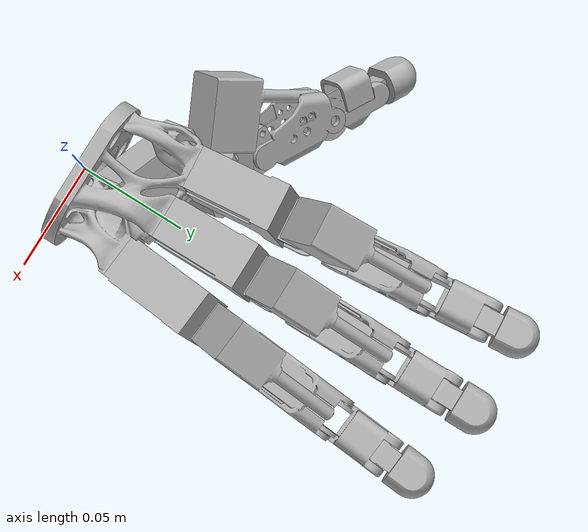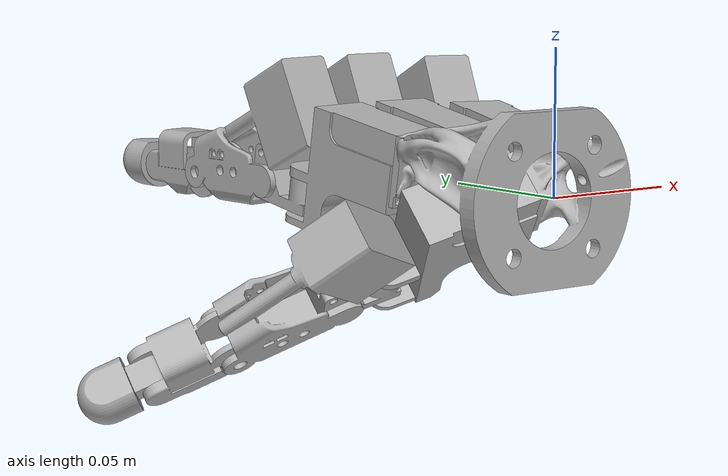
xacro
<?xml version="1.0" ?>
<robot name="hand_urdf" xmlns:xacro="http://www.ros.org/wiki/xacro">

<xacro:include filename="$(find hand_urdf_description)/urdf/materials.xacro" />
<xacro:include filename="$(find hand_urdf_description)/urdf/hand_urdf.trans" />
<xacro:include filename="$(find hand_urdf_description)/urdf/hand_urdf.gazebo" />
<link name="base_link">
  <inertial>
    <origin xyz="0.00012921570168839317 0.017296271435922838 0.004513375763540404" rpy="0 0 0"/>
    <mass value="0.038866249408726565"/>
    <inertia ixx="1.6e-05" iyy="2.3e-05" izz="2.4e-05" ixy="1e-06" iyz="-2e-06" ixz="1e-06"/>
  </inertial>
  <visual>
    <origin xyz="0 0 0" rpy="0 0 0"/>
    <geometry>
      <mesh filename="package://hand_urdf_description/meshes/base_link.stl" scale="0.001 0.001 0.001"/>
    </geometry>
    <material name="silver"/>
  </visual>
  <collision>
    <origin xyz="0 0 0" rpy="0 0 0"/>
    <geometry>
      <mesh filename="package://hand_urdf_description/meshes/base_link.stl" scale="0.001 0.001 0.001"/>
    </geometry>
  </collision>
</link>

<link name="mcp2_1">
  <inertial>
    <origin xyz="-0.000857219821930856 0.008425276895379877 0.008651662245754697" rpy="0 0 0"/>
    <mass value="0.015089936324531419"/>
    <inertia ixx="2e-06" iyy="1e-06" izz="2e-06" ixy="0.0" iyz="-0.0" ixz="0.0"/>
  </inertial>
  <visual>
    <origin xyz="0.029022 -0.100047 0.013279" rpy="0 0 0"/>
    <geometry>
      <mesh filename="package://hand_urdf_description/meshes/mcp2_1.stl" scale="0.001 0.001 0.001"/>
    </geometry>
    <material name="silver"/>
  </visual>
  <collision>
    <origin xyz="0.029022 -0.100047 0.013279" rpy="0 0 0"/>
    <geometry>
      <mesh filename="package://hand_urdf_description/meshes/mcp2_1.stl" scale="0.001 0.001 0.001"/>
    </geometry>
  </collision>
</link>

<link name="pp2_1">
  <inertial>
    <origin xyz="0.005589631674371154 0.02220035094602557 0.0017282537013605936" rpy="0 0 0"/>
    <mass value="0.012568722734729351"/>
    <inertia ixx="3e-06" iyy="2e-06" izz="3e-06" ixy="0.0" iyz="-0.0" ixz="0.0"/>
  </inertial>
  <visual>
    <origin xyz="0.037975 -0.114727 0.00277" rpy="0 0 0"/>
    <geometry>
      <mesh filename="package://hand_urdf_description/meshes/pp2_1.stl" scale="0.001 0.001 0.001"/>
    </geometry>
    <material name="silver"/>
  </visual>
  <collision>
    <origin xyz="0.037975 -0.114727 0.00277" rpy="0 0 0"/>
    <geometry>
      <mesh filename="package://hand_urdf_description/meshes/pp2_1.stl" scale="0.001 0.001 0.001"/>
    </geometry>
  </collision>
</link>

<link name="mp2_1">
  <inertial>
    <origin xyz="0.006764528698269524 0.014467776415687972 0.0012618718592496685" rpy="0 0 0"/>
    <mass value="0.012984163668630283"/>
    <inertia ixx="2e-06" iyy="1e-06" izz="2e-06" ixy="0.0" iyz="-0.0" ixz="0.0"/>
  </inertial>
  <visual>
    <origin xyz="0.041906 -0.154536 0.002803" rpy="0 0 0"/>
    <geometry>
      <mesh filename="package://hand_urdf_description/meshes/mp2_1.stl" scale="0.001 0.001 0.001"/>
    </geometry>
    <material name="silver"/>
  </visual>
  <collision>
    <origin xyz="0.041906 -0.154536 0.002803" rpy="0 0 0"/>
    <geometry>
      <mesh filename="package://hand_urdf_description/meshes/mp2_1.stl" scale="0.001 0.001 0.001"/>
    </geometry>
  </collision>
</link>

<link name="dp2_1">
  <inertial>
    <origin xyz="0.00429284844540978 0.014295948406414294 -0.0002467668250413545" rpy="0 0 0"/>
    <mass value="0.015173806174410396"/>
    <inertia ixx="1e-06" iyy="1e-06" izz="1e-06" ixy="0.0" iyz="0.0" ixz="-0.0"/>
  </inertial>
  <visual>
    <origin xyz="0.041819 -0.182648 0.002784" rpy="0 0 0"/>
    <geometry>
      <mesh filename="package://hand_urdf_description/meshes/dp2_1.stl" scale="0.001 0.001 0.001"/>
    </geometry>
    <material name="silver"/>
  </visual>
  <collision>
    <origin xyz="0.041819 -0.182648 0.002784" rpy="0 0 0"/>
    <geometry>
      <mesh filename="package://hand_urdf_description/meshes/dp2_1.stl" scale="0.001 0.001 0.001"/>
    </geometry>
  </collision>
</link>

<link name="meta2_1">
  <inertial>
    <origin xyz="-0.01211260735781576 0.02648361887802418 -0.013626030591322096" rpy="0 0 0"/>
    <mass value="0.08275708846623805"/>
    <inertia ixx="2.6e-05" iyy="1.2e-05" izz="2e-05" ixy="1e-06" iyz="4e-06" ixz="-0.0"/>
  </inertial>
  <visual>
    <origin xyz="0.01455 -0.042738 -0.019873" rpy="0 0 0"/>
    <geometry>
      <mesh filename="package://hand_urdf_description/meshes/meta2_1.stl" scale="0.001 0.001 0.001"/>
    </geometry>
    <material name="silver"/>
  </visual>
  <collision>
    <origin xyz="0.01455 -0.042738 -0.019873" rpy="0 0 0"/>
    <geometry>
      <mesh filename="package://hand_urdf_description/meshes/meta2_1.stl" scale="0.001 0.001 0.001"/>
    </geometry>
  </collision>
</link>

<link name="meta1_1">
  <inertial>
    <origin xyz="-0.01433264799255881 0.013595958407209792 -0.025367779301763302" rpy="0 0 0"/>
    <mass value="0.08275708846623805"/>
    <inertia ixx="1.8e-05" iyy="1.9e-05" izz="2.1e-05" ixy="4e-06" iyz="6e-06" ixz="-4e-06"/>
  </inertial>
  <visual>
    <origin xyz="0.001495 -0.018282 -0.014265" rpy="0 0 0"/>
    <geometry>
      <mesh filename="package://hand_urdf_description/meshes/meta1_1.stl" scale="0.001 0.001 0.001"/>
    </geometry>
    <material name="silver"/>
  </visual>
  <collision>
    <origin xyz="0.001495 -0.018282 -0.014265" rpy="0 0 0"/>
    <geometry>
      <mesh filename="package://hand_urdf_description/meshes/meta1_1.stl" scale="0.001 0.001 0.001"/>
    </geometry>
  </collision>
</link>

<link name="mcp1_1">
  <inertial>
    <origin xyz="-0.011892392991186895 -0.001978714513159799 0.0011010693501598903" rpy="0 0 0"/>
    <mass value="0.015089936324531419"/>
    <inertia ixx="1e-06" iyy="2e-06" izz="2e-06" ixy="0.0" iyz="0.0" ixz="-0.0"/>
  </inertial>
  <visual>
    <origin xyz="0.029913 -0.05726 0.033338" rpy="0 0 0"/>
    <geometry>
      <mesh filename="package://hand_urdf_description/meshes/mcp1_1.stl" scale="0.001 0.001 0.001"/>
    </geometry>
    <material name="silver"/>
  </visual>
  <collision>
    <origin xyz="0.029913 -0.05726 0.033338" rpy="0 0 0"/>
    <geometry>
      <mesh filename="package://hand_urdf_description/meshes/mcp1_1.stl" scale="0.001 0.001 0.001"/>
    </geometry>
  </collision>
</link>

<link name="pp1_1">
  <inertial>
    <origin xyz="-0.018351787155970807 0.003166558534248194 -0.013426634251556484" rpy="0 0 0"/>
    <mass value="0.012568722734729351"/>
    <inertia ixx="2e-06" iyy="3e-06" izz="3e-06" ixy="0.0" iyz="-0.0" ixz="-0.0"/>
  </inertial>
  <visual>
    <origin xyz="0.048881 -0.061771 0.028246" rpy="0 0 0"/>
    <geometry>
      <mesh filename="package://hand_urdf_description/meshes/pp1_1.stl" scale="0.001 0.001 0.001"/>
    </geometry>
    <material name="silver"/>
  </visual>
  <collision>
    <origin xyz="0.048881 -0.061771 0.028246" rpy="0 0 0"/>
    <geometry>
      <mesh filename="package://hand_urdf_description/meshes/pp1_1.stl" scale="0.001 0.001 0.001"/>
    </geometry>
  </collision>
</link>

<link name="mp1_1">
  <inertial>
    <origin xyz="-0.012268990295802334 0.010230288629700227 0.0012193187905829156" rpy="0 0 0"/>
    <mass value="0.012984163668630283"/>
    <inertia ixx="1e-06" iyy="2e-06" izz="2e-06" ixy="0.0" iyz="0.0" ixz="-0.0"/>
  </inertial>
  <visual>
    <origin xyz="0.081016 -0.068487 0.055859" rpy="0 0 0"/>
    <geometry>
      <mesh filename="package://hand_urdf_description/meshes/mp1_1.stl" scale="0.001 0.001 0.001"/>
    </geometry>
    <material name="silver"/>
  </visual>
  <collision>
    <origin xyz="0.081016 -0.068487 0.055859" rpy="0 0 0"/>
    <geometry>
      <mesh filename="package://hand_urdf_description/meshes/mp1_1.stl" scale="0.001 0.001 0.001"/>
    </geometry>
  </collision>
</link>

<link name="dp1_1">
  <inertial>
    <origin xyz="-0.010958343233780934 0.0024543414174510725 -0.009836853940340486" rpy="0 0 0"/>
    <mass value="0.015173806174410396"/>
    <inertia ixx="1e-06" iyy="1e-06" izz="1e-06" ixy="0.0" iyz="0.0" ixz="-0.0"/>
  </inertial>
  <visual>
    <origin xyz="0.104413 -0.088938 0.056639" rpy="0 0 0"/>
    <geometry>
      <mesh filename="package://hand_urdf_description/meshes/dp1_1.stl" scale="0.001 0.001 0.001"/>
    </geometry>
    <material name="silver"/>
  </visual>
  <collision>
    <origin xyz="0.104413 -0.088938 0.056639" rpy="0 0 0"/>
    <geometry>
      <mesh filename="package://hand_urdf_description/meshes/dp1_1.stl" scale="0.001 0.001 0.001"/>
    </geometry>
  </collision>
</link>

<link name="meta3_1">
  <inertial>
    <origin xyz="-0.009999620624593057 0.027434425012110977 -0.01345837781645952" rpy="0 0 0"/>
    <mass value="0.08275708846623805"/>
    <inertia ixx="2.6e-05" iyy="1.2e-05" izz="2e-05" ixy="-0.0" iyz="4e-06" ixz="0.0"/>
  </inertial>
  <visual>
    <origin xyz="-0.01045 -0.042738 -0.019873" rpy="0 0 0"/>
    <geometry>
      <mesh filename="package://hand_urdf_description/meshes/meta3_1.stl" scale="0.001 0.001 0.001"/>
    </geometry>
    <material name="silver"/>
  </visual>
  <collision>
    <origin xyz="-0.01045 -0.042738 -0.019873" rpy="0 0 0"/>
    <geometry>
      <mesh filename="package://hand_urdf_description/meshes/meta3_1.stl" scale="0.001 0.001 0.001"/>
    </geometry>
  </collision>
</link>

<link name="mcp3_1">
  <inertial>
    <origin xyz="3.793755412869826e-07 0.008462389758387132 0.008657702228539479" rpy="0 0 0"/>
    <mass value="0.015089936324531419"/>
    <inertia ixx="2e-06" iyy="1e-06" izz="2e-06" ixy="0.0" iyz="-0.0" ixz="-0.0"/>
  </inertial>
  <visual>
    <origin xyz="-0.00045 -0.101099 0.013093" rpy="0 0 0"/>
    <geometry>
      <mesh filename="package://hand_urdf_description/meshes/mcp3_1.stl" scale="0.001 0.001 0.001"/>
    </geometry>
    <material name="silver"/>
  </visual>
  <collision>
    <origin xyz="-0.00045 -0.101099 0.013093" rpy="0 0 0"/>
    <geometry>
      <mesh filename="package://hand_urdf_description/meshes/mcp3_1.stl" scale="0.001 0.001 0.001"/>
    </geometry>
  </collision>
</link>

<link name="pp3_1">
  <inertial>
    <origin xyz="-0.007499620582276984 0.021637222266037773 0.0016292944075148592" rpy="0 0 0"/>
    <mass value="0.012568722734729351"/>
    <inertia ixx="3e-06" iyy="2e-06" izz="3e-06" ixy="0.0" iyz="-0.0" ixz="-0.0"/>
  </inertial>
  <visual>
    <origin xyz="-0.00795 -0.116487 0.00246" rpy="0 0 0"/>
    <geometry>
      <mesh filename="package://hand_urdf_description/meshes/pp3_1.stl" scale="0.001 0.001 0.001"/>
    </geometry>
    <material name="silver"/>
  </visual>
  <collision>
    <origin xyz="-0.00795 -0.116487 0.00246" rpy="0 0 0"/>
    <geometry>
      <mesh filename="package://hand_urdf_description/meshes/pp3_1.stl" scale="0.001 0.001 0.001"/>
    </geometry>
  </collision>
</link>

<link name="mp3_1">
  <inertial>
    <origin xyz="0.00800037894498693 0.013832153666036212 0.0011508083582961706" rpy="0 0 0"/>
    <mass value="0.012984163668630283"/>
    <inertia ixx="2e-06" iyy="1e-06" izz="2e-06" ixy="0.0" iyz="-0.0" ixz="-0.0"/>
  </inertial>
  <visual>
    <origin xyz="0.00755 -0.156487 0.00246" rpy="0 0 0"/>
    <geometry>
      <mesh filename="package://hand_urdf_description/meshes/mp3_1.stl" scale="0.001 0.001 0.001"/>
    </geometry>
    <material name="silver"/>
  </visual>
  <collision>
    <origin xyz="0.00755 -0.156487 0.00246" rpy="0 0 0"/>
    <geometry>
      <mesh filename="package://hand_urdf_description/meshes/mp3_1.stl" scale="0.001 0.001 0.001"/>
    </geometry>
  </collision>
</link>

<link name="dp3_1">
  <inertial>
    <origin xyz="-0.005499620624595949 0.01387486124955059 -0.00032075053450385683" rpy="0 0 0"/>
    <mass value="0.015173806174410396"/>
    <inertia ixx="1e-06" iyy="1e-06" izz="1e-06" ixy="0.0" iyz="0.0" ixz="-0.0"/>
  </inertial>
  <visual>
    <origin xyz="-0.00595 -0.184487 0.00246" rpy="0 0 0"/>
    <geometry>
      <mesh filename="package://hand_urdf_description/meshes/dp3_1.stl" scale="0.001 0.001 0.001"/>
    </geometry>
    <material name="silver"/>
  </visual>
  <collision>
    <origin xyz="-0.00595 -0.184487 0.00246" rpy="0 0 0"/>
    <geometry>
      <mesh filename="package://hand_urdf_description/meshes/dp3_1.stl" scale="0.001 0.001 0.001"/>
    </geometry>
  </collision>
</link>

<link name="meta4_1">
  <inertial>
    <origin xyz="-0.00781123734537462 0.028200617914747858 -0.013323778438551112" rpy="0 0 0"/>
    <mass value="0.08275708846623805"/>
    <inertia ixx="2.6e-05" iyy="1.2e-05" izz="2e-05" ixy="-1e-06" iyz="4e-06" ixz="0.0"/>
  </inertial>
  <visual>
    <origin xyz="-0.035255 -0.033939 -0.018322" rpy="0 0 0"/>
    <geometry>
      <mesh filename="package://hand_urdf_description/meshes/meta4_1.stl" scale="0.001 0.001 0.001"/>
    </geometry>
    <material name="silver"/>
  </visual>
  <collision>
    <origin xyz="-0.035255 -0.033939 -0.018322" rpy="0 0 0"/>
    <geometry>
      <mesh filename="package://hand_urdf_description/meshes/meta4_1.stl" scale="0.001 0.001 0.001"/>
    </geometry>
  </collision>
</link>

<link name="mcp4_1">
  <inertial>
    <origin xyz="0.0008573751190080851 0.008425275932080492 0.008650914398521567" rpy="0 0 0"/>
    <mass value="0.015089936324531419"/>
    <inertia ixx="2e-06" iyy="1e-06" izz="2e-06" ixy="-0.0" iyz="-0.0" ixz="-0.0"/>
  </inertial>
  <visual>
    <origin xyz="-0.029803 -0.092965 0.014527" rpy="0 0 0"/>
    <geometry>
      <mesh filename="package://hand_urdf_description/meshes/mcp4_1.stl" scale="0.001 0.001 0.001"/>
    </geometry>
    <material name="silver"/>
  </visual>
  <collision>
    <origin xyz="-0.029803 -0.092965 0.014527" rpy="0 0 0"/>
    <geometry>
      <mesh filename="package://hand_urdf_description/meshes/mcp4_1.stl" scale="0.001 0.001 0.001"/>
    </geometry>
  </collision>
</link>

<link name="pp4_1">
  <inertial>
    <origin xyz="-0.005589476293251516 0.02220034997548516 0.0017285058528506928" rpy="0 0 0"/>
    <mass value="0.012568722734729351"/>
    <inertia ixx="3e-06" iyy="2e-06" izz="3e-06" ixy="-0.0" iyz="-0.0" ixz="-0.0"/>
  </inertial>
  <visual>
    <origin xyz="-0.038756 -0.107645 0.004019" rpy="0 0 0"/>
    <geometry>
      <mesh filename="package://hand_urdf_description/meshes/pp4_1.stl" scale="0.001 0.001 0.001"/>
    </geometry>
    <material name="silver"/>
  </visual>
  <collision>
    <origin xyz="-0.038756 -0.107645 0.004019" rpy="0 0 0"/>
    <geometry>
      <mesh filename="package://hand_urdf_description/meshes/pp4_1.stl" scale="0.001 0.001 0.001"/>
    </geometry>
  </collision>
</link>

<link name="mp4_1">
  <inertial>
    <origin xyz="0.009174625740975717 0.013093775526298868 0.0010201240250489563" rpy="0 0 0"/>
    <mass value="0.012984163668630283"/>
    <inertia ixx="2e-06" iyy="1e-06" izz="2e-06" ixy="-0.0" iyz="-0.0" ixz="-0.0"/>
  </inertial>
  <visual>
    <origin xyz="-0.026748 -0.148828 0.00381" rpy="0 0 0"/>
    <geometry>
      <mesh filename="package://hand_urdf_description/meshes/mp4_1.stl" scale="0.001 0.001 0.001"/>
    </geometry>
    <material name="silver"/>
  </visual>
  <collision>
    <origin xyz="-0.026748 -0.148828 0.00381" rpy="0 0 0"/>
    <geometry>
      <mesh filename="package://hand_urdf_description/meshes/mp4_1.stl" scale="0.001 0.001 0.001"/>
    </geometry>
  </collision>
</link>

<link name="dp4_1">
  <inertial>
    <origin xyz="-0.004292693148604226 0.014295947443138057 -0.00024651467227084205" rpy="0 0 0"/>
    <mass value="0.015173806174410396"/>
    <inertia ixx="1e-06" iyy="1e-06" izz="1e-06" ixy="-0.0" iyz="0.0" ixz="0.0"/>
  </inertial>
  <visual>
    <origin xyz="-0.0426 -0.175566 0.004033" rpy="0 0 0"/>
    <geometry>
      <mesh filename="package://hand_urdf_description/meshes/dp4_1.stl" scale="0.001 0.001 0.001"/>
    </geometry>
    <material name="silver"/>
  </visual>
  <collision>
    <origin xyz="-0.0426 -0.175566 0.004033" rpy="0 0 0"/>
    <geometry>
      <mesh filename="package://hand_urdf_description/meshes/dp4_1.stl" scale="0.001 0.001 0.001"/>
    </geometry>
  </collision>
</link>

<link name="act1_1">
  <inertial>
    <origin xyz="-0.0008334783690262457 -0.010584048424232925 0.013540137304842742" rpy="0 0 0"/>
    <mass value="0.05002702926944018"/>
    <inertia ixx="6e-06" iyy="8e-06" izz="9e-06" ixy="1e-06" iyz="2e-06" ixz="-1e-06"/>
  </inertial>
  <visual>
    <origin xyz="0.056571 -0.049357 0.03252" rpy="0 0 0"/>
    <geometry>
      <mesh filename="package://hand_urdf_description/meshes/act1_1.stl" scale="0.001 0.001 0.001"/>
    </geometry>
    <material name="silver"/>
  </visual>
  <collision>
    <origin xyz="0.056571 -0.049357 0.03252" rpy="0 0 0"/>
    <geometry>
      <mesh filename="package://hand_urdf_description/meshes/act1_1.stl" scale="0.001 0.001 0.001"/>
    </geometry>
  </collision>
</link>

<link name="act2_1">
  <inertial>
    <origin xyz="-0.002920339024002166 -0.0093747457460025 0.014129623411935913" rpy="0 0 0"/>
    <mass value="0.05002702926944018"/>
    <inertia ixx="1e-05" iyy="6e-06" izz="8e-06" ixy="0.0" iyz="-0.0" ixz="0.0"/>
  </inertial>
  <visual>
    <origin xyz="0.027409 -0.118436 -0.007531" rpy="0 0 0"/>
    <geometry>
      <mesh filename="package://hand_urdf_description/meshes/act2_1.stl" scale="0.001 0.001 0.001"/>
    </geometry>
    <material name="silver"/>
  </visual>
  <collision>
    <origin xyz="0.027409 -0.118436 -0.007531" rpy="0 0 0"/>
    <geometry>
      <mesh filename="package://hand_urdf_description/meshes/act2_1.stl" scale="0.001 0.001 0.001"/>
    </geometry>
  </collision>
</link>

<link name="act3_1">
  <inertial>
    <origin xyz="-0.003499620624628681 -0.00909927882179469 0.014178076037896649" rpy="0 0 0"/>
    <mass value="0.05002702926944018"/>
    <inertia ixx="1e-05" iyy="6e-06" izz="8e-06" ixy="0.0" iyz="-0.0" ixz="0.0"/>
  </inertial>
  <visual>
    <origin xyz="-0.00395 -0.119269 -0.007678" rpy="0 0 0"/>
    <geometry>
      <mesh filename="package://hand_urdf_description/meshes/act3_1.stl" scale="0.001 0.001 0.001"/>
    </geometry>
    <material name="silver"/>
  </visual>
  <collision>
    <origin xyz="-0.00395 -0.119269 -0.007678" rpy="0 0 0"/>
    <geometry>
      <mesh filename="package://hand_urdf_description/meshes/act3_1.stl" scale="0.001 0.001 0.001"/>
    </geometry>
  </collision>
</link>

<link name="act4_1">
  <inertial>
    <origin xyz="-0.004053505679259262 -0.008773746709272695 0.014235875564707942" rpy="0 0 0"/>
    <mass value="0.05002702926944018"/>
    <inertia ixx="1e-05" iyy="6e-06" izz="8e-06" ixy="-0.0" iyz="-0.0" ixz="-0.0"/>
  </inertial>
  <visual>
    <origin xyz="-0.035164 -0.110753 -0.006176" rpy="0 0 0"/>
    <geometry>
      <mesh filename="package://hand_urdf_description/meshes/act4_1.stl" scale="0.001 0.001 0.001"/>
    </geometry>
    <material name="silver"/>
  </visual>
  <collision>
    <origin xyz="-0.035164 -0.110753 -0.006176" rpy="0 0 0"/>
    <geometry>
      <mesh filename="package://hand_urdf_description/meshes/act4_1.stl" scale="0.001 0.001 0.001"/>
    </geometry>
  </collision>
</link>

<joint name="aa2" type="continuous">
  <origin xyz="-0.014472 0.057309 -0.033152" rpy="0 0 0"/>
  <parent link="meta2_1"/>
  <child link="mcp2_1"/>
  <axis xyz="0.0 -0.173648 0.984808"/>
</joint>

<joint name="mcp2" type="continuous">
  <origin xyz="-0.008953 0.01468 0.010509" rpy="0 0 0"/>
  <parent link="mcp2_1"/>
  <child link="pp2_1"/>
  <axis xyz="-0.996195 -0.085832 -0.015134"/>
</joint>

<joint name="pip2" type="continuous">
  <origin xyz="-0.003931 0.039809 -3.3e-05" rpy="0 0 0"/>
  <parent link="pp2_1"/>
  <child link="mp2_1"/>
  <axis xyz="-0.996195 -0.085832 -0.015134"/>
</joint>

<joint name="dip2" type="continuous">
  <origin xyz="8.7e-05 0.028112 1.9e-05" rpy="0 0 0"/>
  <parent link="mp2_1"/>
  <child link="dp2_1"/>
  <axis xyz="-0.996195 -0.085832 -0.015134"/>
</joint>

<joint name="rigid2" type="fixed">
  <origin xyz="-0.01455 0.042738 0.019873" rpy="0 0 0"/>
  <parent link="base_link"/>
  <child link="meta2_1"/>
</joint>

<joint name="rigid1" type="fixed">
  <origin xyz="-0.001495 0.018282 0.014265" rpy="0 0 0"/>
  <parent link="base_link"/>
  <child link="meta1_1"/>
</joint>

<joint name="aa1" type="continuous">
  <origin xyz="-0.028418 0.038978 -0.047603" rpy="0 0 0"/>
  <parent link="meta1_1"/>
  <child link="mcp1_1"/>
  <axis xyz="-0.42367 -0.700575 0.574195"/>
</joint>

<joint name="mcp1" type="continuous">
  <origin xyz="-0.018968 0.004511 0.005092" rpy="0 0 0"/>
  <parent link="mcp1_1"/>
  <child link="pp1_1"/>
  <axis xyz="0.037066 -0.646775 -0.76178"/>
</joint>

<joint name="pip1" type="continuous">
  <origin xyz="-0.032135 0.006716 -0.027613" rpy="0 0 0"/>
  <parent link="pp1_1"/>
  <child link="mp1_1"/>
  <axis xyz="0.037066 -0.646775 -0.76178"/>
</joint>

<joint name="dip1" type="continuous">
  <origin xyz="-0.023397 0.020451 -0.00078" rpy="0 0 0"/>
  <parent link="mp1_1"/>
  <child link="dp1_1"/>
  <axis xyz="0.037066 -0.646775 -0.76178"/>
</joint>

<joint name="rigid3" type="fixed">
  <origin xyz="0.01045 0.042738 0.019873" rpy="0 0 0"/>
  <parent link="base_link"/>
  <child link="meta3_1"/>
</joint>

<joint name="aa3" type="continuous">
  <origin xyz="-0.01 0.058361 -0.032966" rpy="0 0 0"/>
  <parent link="meta3_1"/>
  <child link="mcp3_1"/>
  <axis xyz="0.0 -0.173648 0.984808"/>
</joint>

<joint name="mcp3" type="continuous">
  <origin xyz="0.0075 0.015388 0.010633" rpy="0 0 0"/>
  <parent link="mcp3_1"/>
  <child link="pp3_1"/>
  <axis xyz="-1.0 -0.0 0.0"/>
</joint>

<joint name="pip3" type="continuous">
  <origin xyz="-0.0155 0.04 0.0" rpy="0 0 0"/>
  <parent link="pp3_1"/>
  <child link="mp3_1"/>
  <axis xyz="-1.0 -0.0 0.0"/>
</joint>

<joint name="dip3" type="continuous">
  <origin xyz="0.0135 0.028 0.0" rpy="0 0 0"/>
  <parent link="mp3_1"/>
  <child link="dp3_1"/>
  <axis xyz="-1.0 -0.0 -0.0"/>
</joint>

<joint name="rigid4" type="fixed">
  <origin xyz="0.035255 0.033939 0.018322" rpy="0 0 0"/>
  <parent link="base_link"/>
  <child link="meta4_1"/>
</joint>

<joint name="aa4" type="continuous">
  <origin xyz="-0.005452 0.059026 -0.032849" rpy="0 0 0"/>
  <parent link="meta4_1"/>
  <child link="mcp4_1"/>
  <axis xyz="0.0 -0.173648 0.984808"/>
</joint>

<joint name="mcp4" type="continuous">
  <origin xyz="0.008953 0.01468 0.010508" rpy="0 0 0"/>
  <parent link="mcp4_1"/>
  <child link="pp4_1"/>
  <axis xyz="-0.996195 0.085832 0.015134"/>
</joint>

<joint name="pip4" type="continuous">
  <origin xyz="-0.012008 0.041183 0.000209" rpy="0 0 0"/>
  <parent link="pp4_1"/>
  <child link="mp4_1"/>
  <axis xyz="-1.0 -0.0 0.0"/>
</joint>

<joint name="dip4" type="continuous">
  <origin xyz="0.015852 0.026738 -0.000223" rpy="0 0 0"/>
  <parent link="mp4_1"/>
  <child link="dp4_1"/>
  <axis xyz="-0.996195 0.085832 0.015134"/>
</joint>

<joint name="act1" type="continuous">
  <origin xyz="-0.026658 -0.007903 0.000818" rpy="0 0 0"/>
  <parent link="mcp1_1"/>
  <child link="act1_1"/>
  <axis xyz="0.037066 -0.646775 -0.76178"/>
</joint>

<joint name="act2" type="continuous">
  <origin xyz="0.001613 0.018389 0.02081" rpy="0 0 0"/>
  <parent link="mcp2_1"/>
  <child link="act2_1"/>
  <axis xyz="-0.996195 -0.085832 -0.015134"/>
</joint>

<joint name="act3" type="continuous">
  <origin xyz="0.0035 0.01817 0.020771" rpy="0 0 0"/>
  <parent link="mcp3_1"/>
  <child link="act3_1"/>
  <axis xyz="-1.0 -0.0 0.0"/>
</joint>

<joint name="act4" type="continuous">
  <origin xyz="0.005361 0.017788 0.020703" rpy="0 0 0"/>
  <parent link="mcp4_1"/>
  <child link="act4_1"/>
  <axis xyz="-0.996195 0.085832 0.015134"/>
</joint>

</robot>

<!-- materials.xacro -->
<robot name="hand_urdf" xmlns:xacro="http://www.ros.org/wiki/xacro" >

<material name="silver">
  <color rgba="0.700 0.700 0.700 1.000"/>
</material>

</robot>

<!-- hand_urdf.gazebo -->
<robot name="hand_urdf" xmlns:xacro="http://www.ros.org/wiki/xacro" >

<xacro:property name="body_color" value="Gazebo/Silver" />

<gazebo>
  <plugin name="control" filename="libgazebo_ros_control.so"/>
</gazebo>
<gazebo reference="base_link">
  <material>${body_color}</material>
  <mu1>0.2</mu1>
  <mu2>0.2</mu2>
  <selfCollide>true</selfCollide>
  <gravity>true</gravity>
</gazebo>

<gazebo reference="mcp2_1">
  <material>${body_color}</material>
  <mu1>0.2</mu1>
  <mu2>0.2</mu2>
  <selfCollide>true</selfCollide>
</gazebo>

<gazebo reference="pp2_1">
  <material>${body_color}</material>
  <mu1>0.2</mu1>
  <mu2>0.2</mu2>
  <selfCollide>true</selfCollide>
</gazebo>

<gazebo reference="mp2_1">
  <material>${body_color}</material>
  <mu1>0.2</mu1>
  <mu2>0.2</mu2>
  <selfCollide>true</selfCollide>
</gazebo>

<gazebo reference="dp2_1">
  <material>${body_color}</material>
  <mu1>0.2</mu1>
  <mu2>0.2</mu2>
  <selfCollide>true</selfCollide>
</gazebo>

<gazebo reference="meta2_1">
  <material>${body_color}</material>
  <mu1>0.2</mu1>
  <mu2>0.2</mu2>
  <selfCollide>true</selfCollide>
</gazebo>

<gazebo reference="meta1_1">
  <material>${body_color}</material>
  <mu1>0.2</mu1>
  <mu2>0.2</mu2>
  <selfCollide>true</selfCollide>
</gazebo>

<gazebo reference="mcp1_1">
  <material>${body_color}</material>
  <mu1>0.2</mu1>
  <mu2>0.2</mu2>
  <selfCollide>true</selfCollide>
</gazebo>

<gazebo reference="pp1_1">
  <material>${body_color}</material>
  <mu1>0.2</mu1>
  <mu2>0.2</mu2>
  <selfCollide>true</selfCollide>
</gazebo>

<gazebo reference="mp1_1">
  <material>${body_color}</material>
  <mu1>0.2</mu1>
  <mu2>0.2</mu2>
  <selfCollide>true</selfCollide>
</gazebo>

<gazebo reference="dp1_1">
  <material>${body_color}</material>
  <mu1>0.2</mu1>
  <mu2>0.2</mu2>
  <selfCollide>true</selfCollide>
</gazebo>

<gazebo reference="meta3_1">
  <material>${body_color}</material>
  <mu1>0.2</mu1>
  <mu2>0.2</mu2>
  <selfCollide>true</selfCollide>
</gazebo>

<gazebo reference="mcp3_1">
  <material>${body_color}</material>
  <mu1>0.2</mu1>
  <mu2>0.2</mu2>
  <selfCollide>true</selfCollide>
</gazebo>

<gazebo reference="pp3_1">
  <material>${body_color}</material>
  <mu1>0.2</mu1>
  <mu2>0.2</mu2>
  <selfCollide>true</selfCollide>
</gazebo>

<gazebo reference="mp3_1">
  <material>${body_color}</material>
  <mu1>0.2</mu1>
  <mu2>0.2</mu2>
  <selfCollide>true</selfCollide>
</gazebo>

<gazebo reference="dp3_1">
  <material>${body_color}</material>
  <mu1>0.2</mu1>
  <mu2>0.2</mu2>
  <selfCollide>true</selfCollide>
</gazebo>

<gazebo reference="meta4_1">
  <material>${body_color}</material>
  <mu1>0.2</mu1>
  <mu2>0.2</mu2>
  <selfCollide>true</selfCollide>
</gazebo>

<gazebo reference="mcp4_1">
  <material>${body_color}</material>
  <mu1>0.2</mu1>
  <mu2>0.2</mu2>
  <selfCollide>true</selfCollide>
</gazebo>

<gazebo reference="pp4_1">
  <material>${body_color}</material>
  <mu1>0.2</mu1>
  <mu2>0.2</mu2>
  <selfCollide>true</selfCollide>
</gazebo>

<gazebo reference="mp4_1">
  <material>${body_color}</material>
  <mu1>0.2</mu1>
  <mu2>0.2</mu2>
  <selfCollide>true</selfCollide>
</gazebo>

<gazebo reference="dp4_1">
  <material>${body_color}</material>
  <mu1>0.2</mu1>
  <mu2>0.2</mu2>
  <selfCollide>true</selfCollide>
</gazebo>

<gazebo reference="act1_1">
  <material>${body_color}</material>
  <mu1>0.2</mu1>
  <mu2>0.2</mu2>
  <selfCollide>true</selfCollide>
</gazebo>

<gazebo reference="act2_1">
  <material>${body_color}</material>
  <mu1>0.2</mu1>
  <mu2>0.2</mu2>
  <selfCollide>true</selfCollide>
</gazebo>

<gazebo reference="act3_1">
  <material>${body_color}</material>
  <mu1>0.2</mu1>
  <mu2>0.2</mu2>
  <selfCollide>true</selfCollide>
</gazebo>

<gazebo reference="act4_1">
  <material>${body_color}</material>
  <mu1>0.2</mu1>
  <mu2>0.2</mu2>
  <selfCollide>true</selfCollide>
</gazebo>

</robot>
